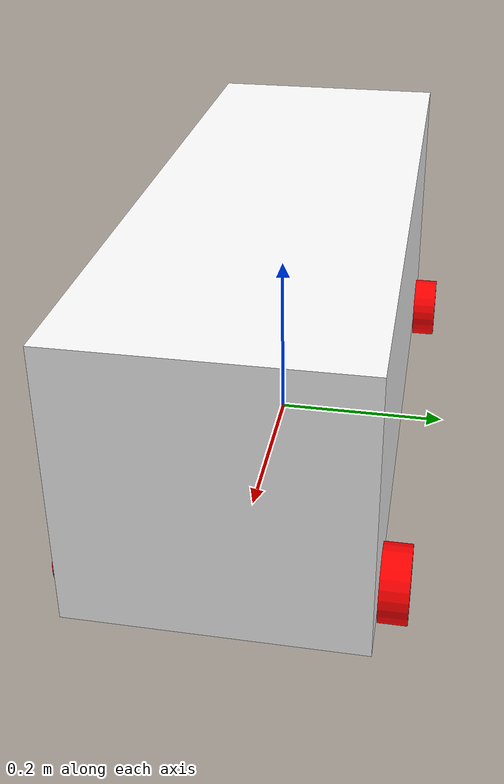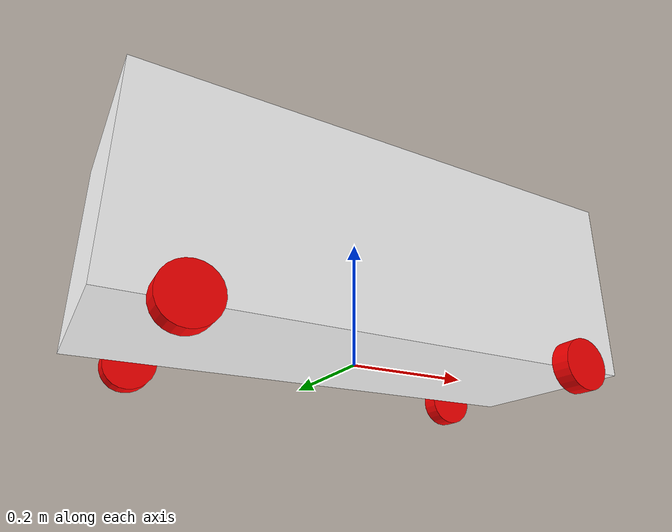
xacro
<?xml version="1.0"?>
<robot xmlns:xacro="http://www.ros.org/wiki/xacro">

    <xacro:include filename="inertial_macros.xacro"/>

    <material name="black">
        <color rgba="0 0 0 1"/>
    </material>

    <material name="white">
        <color rgba="1 1 1 1"/>
    </material>

    <material name="red">
        <color rgba="1 0 0 1"/>
    </material>

    <material name="green">
        <color rgba="0 1 0 1"/>
    </material>

    <material name="blue">
        <color rgba="0 0 1 1"/>
    </material>

    <link name="base_link" />

    <joint name="chassis_joint" type="fixed">
        <parent link="base_link"/>
        <child link="chassis"/>
        <origin xyz="-0.40 0 0" rpy="0 0 0"/>
    </joint>

    <!-- Chassis -->
    <link name="chassis">
        <visual>
            <origin xyz="0.40 0 0.15" rpy="0 0 0"/>
            <geometry>
                <box size="0.80 0.30 0.30"/>
            </geometry>
            <material name="white"/>
        </visual>
        <collision>
            <origin xyz="0.40 0 0.15" rpy="0 0 0"/>
            <geometry>
                <box size="0.80 0.30 0.30"/>
            </geometry>
        </collision>
        <xacro:inertial_box mass="1.0" x="0.80" y="0.30" z="0.30">
            <origin xyz="0.40 0 0.15" rpy="0 0 0"/>
        </xacro:inertial_box>
    </link>

    <gazebo reference="chassis">
        <material>Gazebo/White</material>
    </gazebo>

    <!-- Left front wheel -->
    <joint name="lf_wheel_joint" type="continuous">
        <parent link="base_link"/>
        <child link="lf_wheel"/>
        <origin xyz="0.30 0.165 0" rpy="-${pi/2} 0 0"/>
        <axis xyz="0 0 1"/>
    </joint>

    <link name="lf_wheel">
        <visual>
            <geometry>
                <cylinder radius="0.04" length="0.03"/>
            </geometry>
            <material name="red"/>
        </visual>
        <collision>
            <geometry>
                <cylinder radius="0.04" length="0.03"/>
            </geometry>
        </collision>
        <xacro:inertial_cylinder mass="0.1" length="0.03" radius="0.04">
            <origin xyz="0 0 0" rpy="0 0 0"/>
        </xacro:inertial_cylinder>
    </link>

    <gazebo reference="lf_wheel">
        <material>Gazebo/Red</material>
    </gazebo>

    <!-- Right front wheel -->
    <joint name="rf_wheel_joint" type="continuous">
        <parent link="base_link"/>
        <child link="rf_wheel"/>
        <origin xyz="0.30 -0.165 0" rpy="${pi/2} 0 0"/>
        <axis xyz="0 0 -1"/>
    </joint>

    <link name="rf_wheel">
        <visual>
            <geometry>
                <cylinder radius="0.04" length="0.03"/>
            </geometry>
            <material name="red"/>
        </visual>
        <collision>
            <geometry>
                <cylinder radius="0.04" length="0.03"/>
            </geometry>
        </collision>
        <xacro:inertial_cylinder mass="0.1" length="0.03" radius="0.04">
            <origin xyz="0 0 0" rpy="0 0 0"/>
        </xacro:inertial_cylinder>
    </link>

    <gazebo reference="rf_wheel">
        <material>Gazebo/Red</material>
    </gazebo>

    <!-- Left rear wheel -->
    <joint name="lr_wheel_joint" type="continuous">
        <parent link="base_link"/>
        <child link="lr_wheel"/>
        <origin xyz="-0.30 0.165 0" rpy="-${pi/2} 0 0"/>
        <axis xyz="0 0 1"/>
    </joint>

    <link name="lr_wheel">
        <visual>
            <geometry>
                <cylinder radius="0.04" length="0.03"/>
            </geometry>
            <material name="red"/>
        </visual>
        <collision>
            <geometry>
                <cylinder radius="0.04" length="0.03"/>
            </geometry>
        </collision>
        <xacro:inertial_cylinder mass="0.1" length="0.03" radius="0.04">
            <origin xyz="0 0 0" rpy="0 0 0"/>
        </xacro:inertial_cylinder>
    </link>

    <gazebo reference="lr_wheel">
        <material>Gazebo/Red</material>
    </gazebo>

    <!-- Right rear wheel -->
    <joint name="rr_wheel_joint" type="continuous">
        <parent link="base_link"/>
        <child link="rr_wheel"/>
        <origin xyz="-0.30 -0.165 0" rpy="${pi/2} 0 0"/>
        <axis xyz="0 0 -1"/>
    </joint>

    <link name="rr_wheel">
        <visual>
            <geometry>
                <cylinder radius="0.04" length="0.03"/>
            </geometry>
            <material name="red"/>
        </visual>
        <collision>
            <geometry>
                <cylinder radius="0.04" length="0.03"/>
            </geometry>
        </collision>
        <xacro:inertial_cylinder mass="0.1" length="0.03" radius="0.04">
            <origin xyz="0 0 0" rpy="0 0 0"/>
        </xacro:inertial_cylinder>
    </link>

    <gazebo reference="rr_wheel">
        <material>Gazebo/Red</material>
    </gazebo>

</robot>
